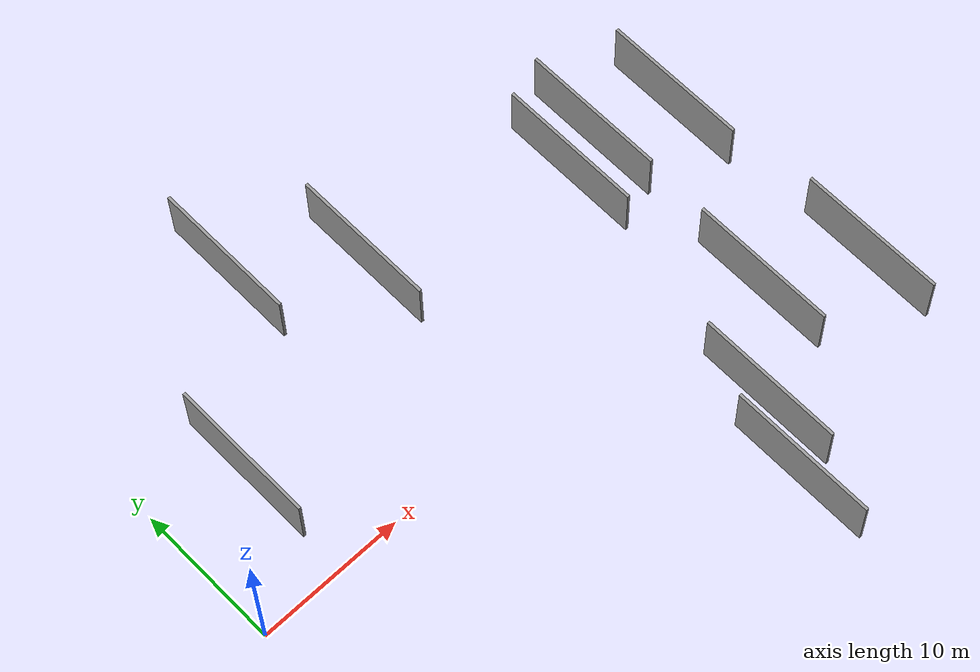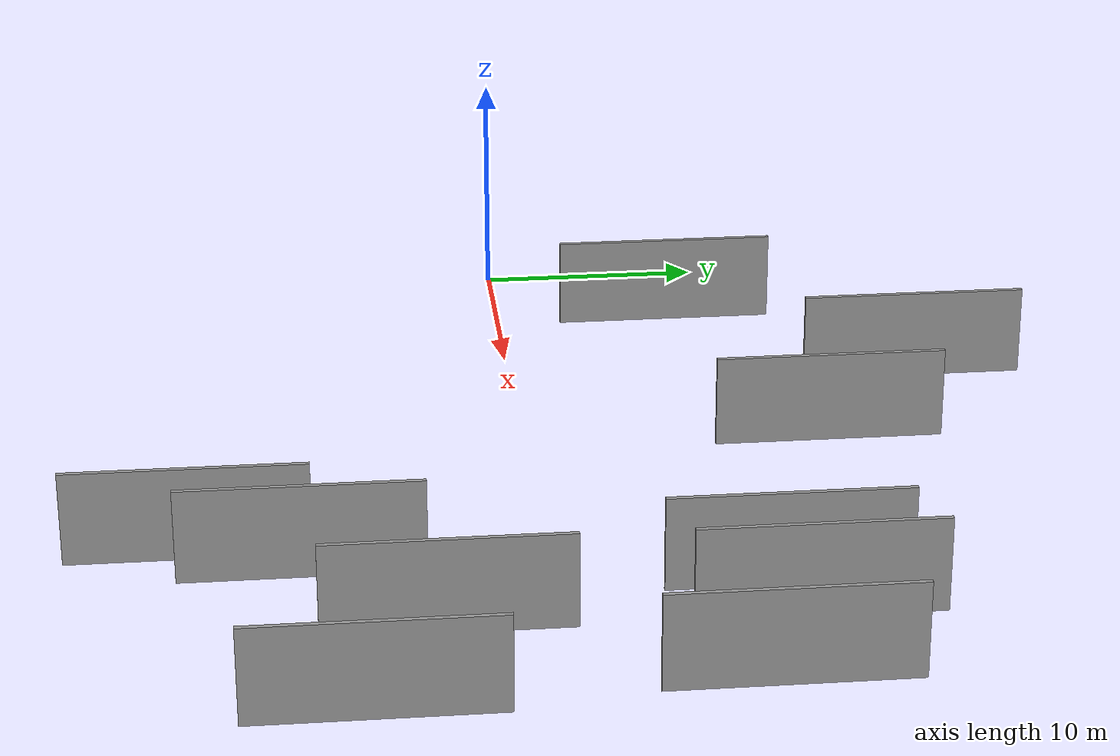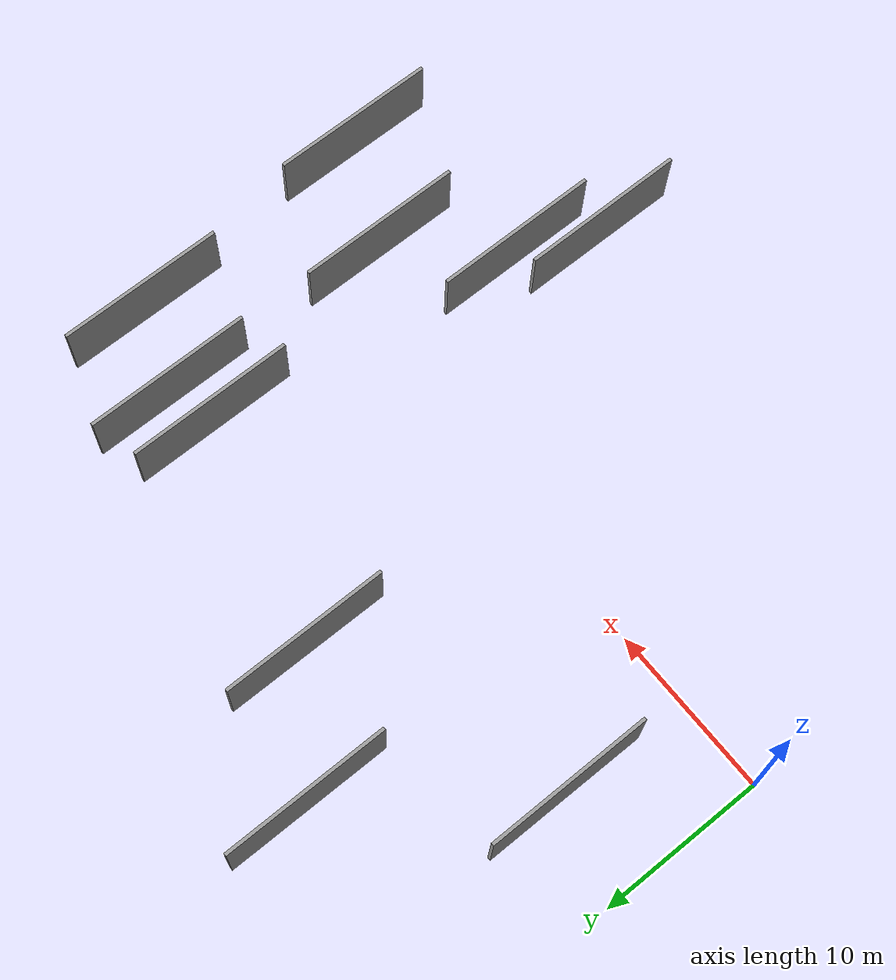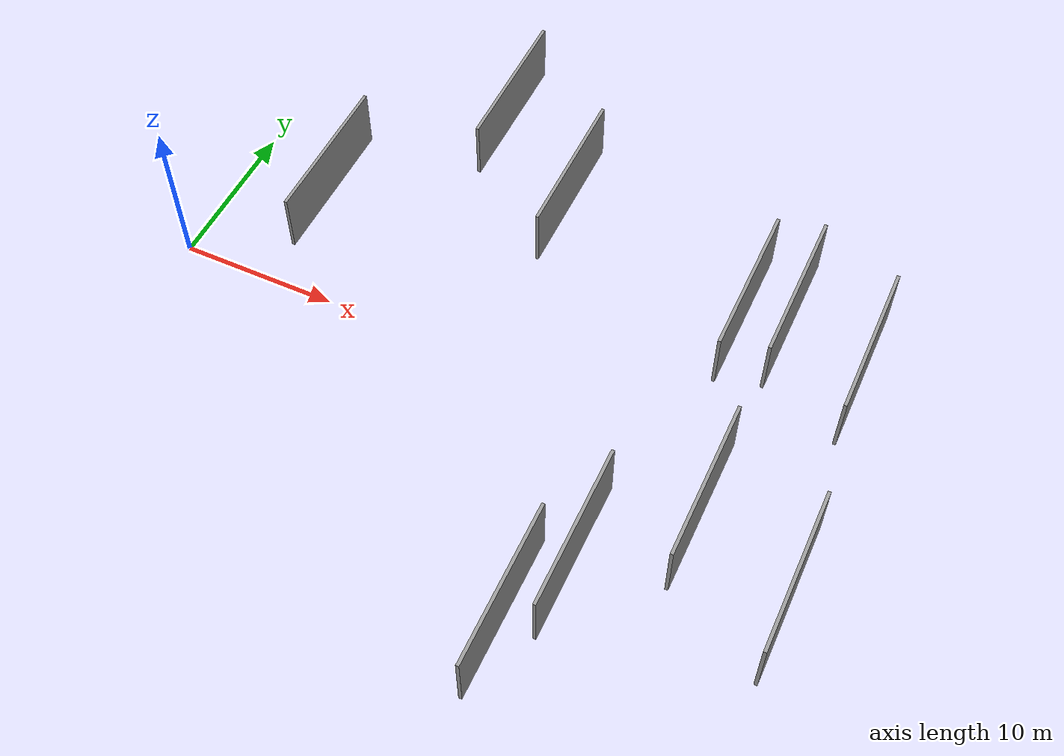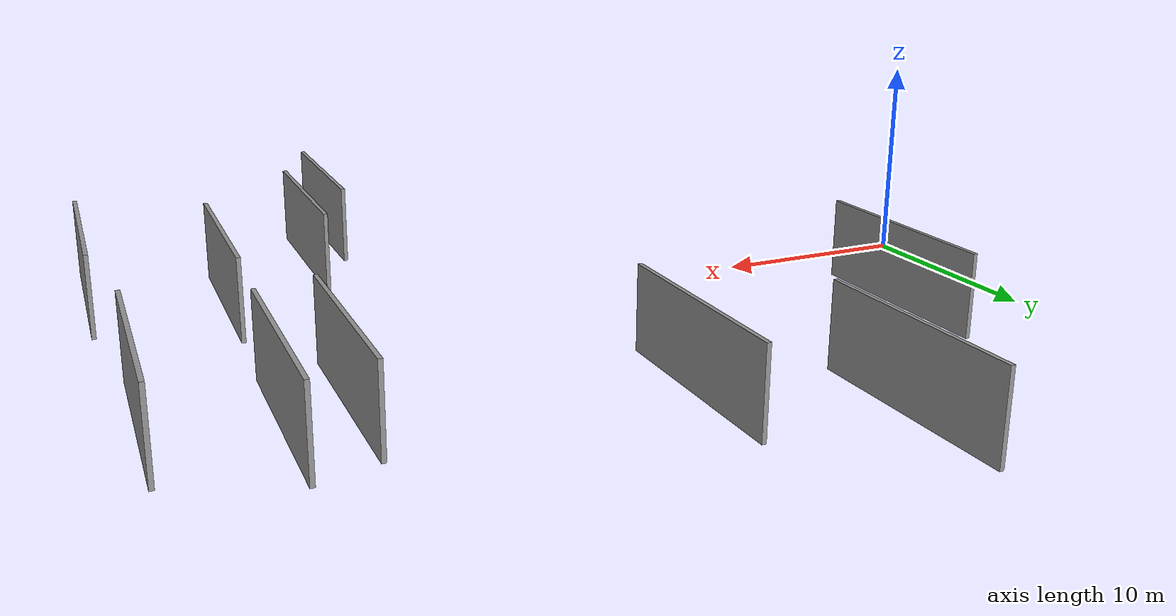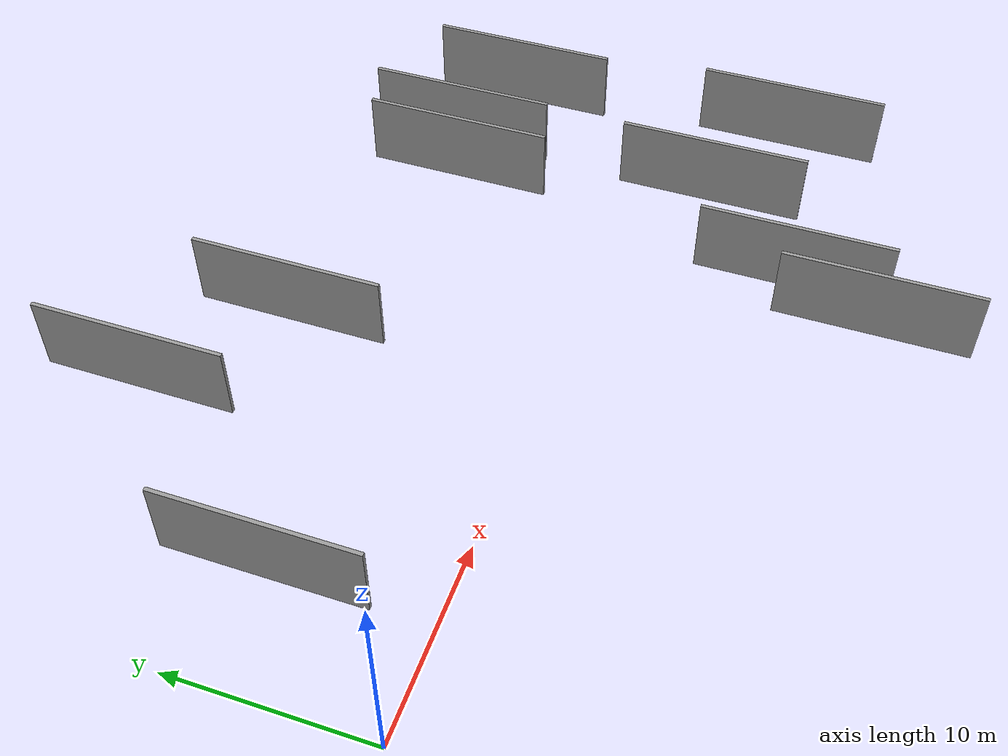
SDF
<sdf version="1.6">
 <world name="default">
  <scene>
   <sky><clouds><speed>12</speed></clouds></sky>
   <ambient>0.4 0.4 0.4 1</ambient>
   <background>0.7 0.7 0.7 1</background>
   <shadows>1</shadows>
  </scene>
  <gravity>0 0 -9.8066</gravity>
  <magnetic_field>6e-06 2.3e-05 -4.2e-05</magnetic_field>
  <physics default="0" name="default_physics" type="ode">
   <ode>
    <solver>
     <type>quick</type>
     <iters>10</iters>
     <sor>1.0</sor>
     <use_dynamic_moi_rescaling>0</use_dynamic_moi_rescaling>
    </solver>
    <constraints>
     <cfm>0</cfm>
     <erp>0.2</erp>
     <contact_max_correcting_vel>100</contact_max_correcting_vel>
     <contact_surface_layer>0.001</contact_surface_layer>
    </constraints>
   </ode>
   <max_step_size>0.004</max_step_size>
   <real_time_factor>1</real_time_factor>
   <real_time_update_rate>250</real_time_update_rate>
  </physics>
  <light name="sun" type="directional">
   <pose>0 0 10 0 0 0</pose>
   <diffuse>0.8 0.8 0.8 1</diffuse>
   <specular>0.2 0.2 0.2 1</specular>
   <attenuation>
    <range>1000</range>
    <constant>0.9</constant>
    <linear>0.01</linear>
    <quadratic>0.001</quadratic>
   </attenuation>
   <direction>-0.5 0.1 -0.9</direction>
  </light>
  <model name="grey_wall_1">
   <static>1</static>
   <pose>41.0609 8.2784 0.0 0.000000 0.000000 1.570796</pose>
   <link name="link">
    <pose>0 0 2.00 0 0 0</pose>
    <collision name="collision"><geometry><box><size>10.00 0.2 4.00</size></box></geometry></collision>
    <visual name="visual">
     <cast_shadows>0</cast_shadows>
     <geometry><box><size>10.00 0.2 4.00</size></box></geometry>
     <material>
      <script>
       <uri>model://grey_wall/materials/scripts</uri>
       <uri>model://grey_wall/materials/textures</uri>
       <name>vrc/grey_wall</name>
      </script>
     </material>
    </visual>
   </link>
  </model>
  <model name="grey_wall_2">
   <static>1</static>
   <pose>30.6663 -9.7383 0.0 0.000000 0.000000 1.570796</pose>
   <link name="link">
    <pose>0 0 2.00 0 0 0</pose>
    <collision name="collision"><geometry><box><size>10.00 0.2 4.00</size></box></geometry></collision>
    <visual name="visual">
     <cast_shadows>0</cast_shadows>
     <geometry><box><size>10.00 0.2 4.00</size></box></geometry>
     <material>
      <script>
       <uri>model://grey_wall/materials/scripts</uri>
       <uri>model://grey_wall/materials/textures</uri>
       <name>vrc/grey_wall</name>
      </script>
     </material>
    </visual>
   </link>
  </model>
  <model name="grey_wall_3">
   <static>1</static>
   <pose>33.2525 9.4247 0.0 0.000000 0.000000 1.570796</pose>
   <link name="link">
    <pose>0 0 2.00 0 0 0</pose>
    <collision name="collision"><geometry><box><size>10.00 0.2 4.00</size></box></geometry></collision>
    <visual name="visual">
     <cast_shadows>0</cast_shadows>
     <geometry><box><size>10.00 0.2 4.00</size></box></geometry>
     <material>
      <script>
       <uri>model://grey_wall/materials/scripts</uri>
       <uri>model://grey_wall/materials/textures</uri>
       <name>vrc/grey_wall</name>
      </script>
     </material>
    </visual>
   </link>
  </model>
  <model name="grey_wall_4">
   <static>1</static>
   <pose>35.8431 -4.2100 0.0 0.000000 0.000000 1.570796</pose>
   <link name="link">
    <pose>0 0 2.00 0 0 0</pose>
    <collision name="collision"><geometry><box><size>10.00 0.2 4.00</size></box></geometry></collision>
    <visual name="visual">
     <cast_shadows>0</cast_shadows>
     <geometry><box><size>10.00 0.2 4.00</size></box></geometry>
     <material>
      <script>
       <uri>model://grey_wall/materials/scripts</uri>
       <uri>model://grey_wall/materials/textures</uri>
       <name>vrc/grey_wall</name>
      </script>
     </material>
    </visual>
   </link>
  </model>
  <model name="grey_wall_5">
   <static>1</static>
   <pose>5.6778 8.0103 0.0 0.000000 0.000000 1.570796</pose>
   <link name="link">
    <pose>0 0 2.00 0 0 0</pose>
    <collision name="collision"><geometry><box><size>10.00 0.2 4.00</size></box></geometry></collision>
    <visual name="visual">
     <cast_shadows>0</cast_shadows>
     <geometry><box><size>10.00 0.2 4.00</size></box></geometry>
     <material>
      <script>
       <uri>model://grey_wall/materials/scripts</uri>
       <uri>model://grey_wall/materials/textures</uri>
       <name>vrc/grey_wall</name>
      </script>
     </material>
    </visual>
   </link>
  </model>
  <model name="grey_wall_6">
   <static>1</static>
   <pose>20.0114 13.4234 0.0 0.000000 0.000000 1.570796</pose>
   <link name="link">
    <pose>0 0 2.00 0 0 0</pose>
    <collision name="collision"><geometry><box><size>10.00 0.2 4.00</size></box></geometry></collision>
    <visual name="visual">
     <cast_shadows>0</cast_shadows>
     <geometry><box><size>10.00 0.2 4.00</size></box></geometry>
     <material>
      <script>
       <uri>model://grey_wall/materials/scripts</uri>
       <uri>model://grey_wall/materials/textures</uri>
       <name>vrc/grey_wall</name>
      </script>
     </material>
    </visual>
   </link>
  </model>
  <model name="grey_wall_7">
   <static>1</static>
   <pose>13.5016 18.4486 0.0 0.000000 0.000000 1.570796</pose>
   <link name="link">
    <pose>0 0 2.00 0 0 0</pose>
    <collision name="collision"><geometry><box><size>10.00 0.2 4.00</size></box></geometry></collision>
    <visual name="visual">
     <cast_shadows>0</cast_shadows>
     <geometry><box><size>10.00 0.2 4.00</size></box></geometry>
     <material>
      <script>
       <uri>model://grey_wall/materials/scripts</uri>
       <uri>model://grey_wall/materials/textures</uri>
       <name>vrc/grey_wall</name>
      </script>
     </material>
    </visual>
   </link>
  </model>
  <model name="grey_wall_8">
   <static>1</static>
   <pose>41.9892 -7.2509 0.0 0.000000 0.000000 1.570796</pose>
   <link name="link">
    <pose>0 0 2.00 0 0 0</pose>
    <collision name="collision"><geometry><box><size>10.00 0.2 4.00</size></box></geometry></collision>
    <visual name="visual">
     <cast_shadows>0</cast_shadows>
     <geometry><box><size>10.00 0.2 4.00</size></box></geometry>
     <material>
      <script>
       <uri>model://grey_wall/materials/scripts</uri>
       <uri>model://grey_wall/materials/textures</uri>
       <name>vrc/grey_wall</name>
      </script>
     </material>
    </visual>
   </link>
  </model>
  <model name="grey_wall_9">
   <static>1</static>
   <pose>35.9915 10.2164 0.0 0.000000 0.000000 1.570796</pose>
   <link name="link">
    <pose>0 0 2.00 0 0 0</pose>
    <collision name="collision"><geometry><box><size>10.00 0.2 4.00</size></box></geometry></collision>
    <visual name="visual">
     <cast_shadows>0</cast_shadows>
     <geometry><box><size>10.00 0.2 4.00</size></box></geometry>
     <material>
      <script>
       <uri>model://grey_wall/materials/scripts</uri>
       <uri>model://grey_wall/materials/textures</uri>
       <name>vrc/grey_wall</name>
      </script>
     </material>
    </visual>
   </link>
  </model>
  <model name="grey_wall_10">
   <static>1</static>
   <pose>28.6514 -14.2909 0.0 0.000000 0.000000 1.570796</pose>
   <link name="link">
    <pose>0 0 2.00 0 0 0</pose>
    <collision name="collision"><geometry><box><size>10.00 0.2 4.00</size></box></geometry></collision>
    <visual name="visual">
     <cast_shadows>0</cast_shadows>
     <geometry><box><size>10.00 0.2 4.00</size></box></geometry>
     <material>
      <script>
       <uri>model://grey_wall/materials/scripts</uri>
       <uri>model://grey_wall/materials/textures</uri>
       <name>vrc/grey_wall</name>
      </script>
     </material>
    </visual>
   </link>
  </model>
 </world>
</sdf>
